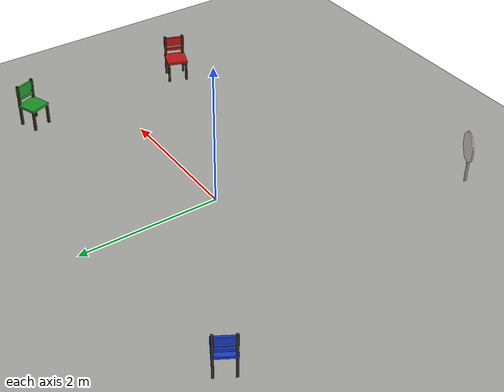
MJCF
<mujoco model="task2_object_scene">
  <!-- Task 2 custom object scene. Static bodies only for MapSpec compatibility. -->
  <compiler meshdir="." texturedir="."/>
  <asset>
    <texture name="floor_tex" type="2d" builtin="checker" rgb1="0.72 0.72 0.70" rgb2="0.62 0.62 0.60" width="512" height="512"/>
    <material name="floor_mat" texture="floor_tex" texrepeat="8 8" reflectance="0.05"/>
    <texture name="stop_tex" type="2d" file="stop_sign.png"/>
    <material name="stop_mat" texture="stop_tex"/>
    <texture name="ball_tex" type="2d" file="ball.png"/>
    <material name="ball_mat" texture="ball_tex"/>
    <mesh name="stop_sign" file="stop_sign.obj"/>
  </asset>
  <worldbody>
    <geom name="floor" type="plane" size="20 20 0.1" material="floor_mat"/>
    <body name="chair_green" pos="3.0 1.2 0" quat="-0.173648 0 0 0.984808">
      <geom type="box" size="0.1540 0.1540 0.0175" pos="0.0000 0.0000 0.3150" rgba="0.10 0.60 0.15 1"/>
      <geom type="box" size="0.0154 0.0154 0.1505" pos="-0.1330 -0.1330 0.1505" rgba="0.25 0.18 0.12 1"/>
      <geom type="box" size="0.0154 0.0154 0.1505" pos="-0.1330 0.1330 0.1505" rgba="0.25 0.18 0.12 1"/>
      <geom type="box" size="0.0154 0.0154 0.1505" pos="0.1330 -0.1330 0.1505" rgba="0.25 0.18 0.12 1"/>
      <geom type="box" size="0.0154 0.0154 0.1505" pos="0.1330 0.1330 0.1505" rgba="0.25 0.18 0.12 1"/>
      <geom type="box" size="0.0154 0.0154 0.1540" pos="-0.1330 -0.1330 0.4830" rgba="0.25 0.18 0.12 1"/>
      <geom type="box" size="0.0154 0.0154 0.1540" pos="-0.1330 0.1330 0.4830" rgba="0.25 0.18 0.12 1"/>
      <geom type="box" size="0.0140 0.1540 0.0700" pos="-0.1330 0.0000 0.5460" rgba="0.10 0.60 0.15 1"/>
      <geom type="box" size="0.0140 0.1330 0.0210" pos="-0.1330 0.0000 0.4200" rgba="0.10 0.60 0.15 1"/>
    </body>
    <body name="chair_red" pos="3.0 -1.2 0" quat="0.173648 0 0 0.984808">
      <geom type="box" size="0.1540 0.1540 0.0175" pos="0.0000 0.0000 0.3150" rgba="0.75 0.08 0.08 1"/>
      <geom type="box" size="0.0154 0.0154 0.1505" pos="-0.1330 -0.1330 0.1505" rgba="0.25 0.18 0.12 1"/>
      <geom type="box" size="0.0154 0.0154 0.1505" pos="-0.1330 0.1330 0.1505" rgba="0.25 0.18 0.12 1"/>
      <geom type="box" size="0.0154 0.0154 0.1505" pos="0.1330 -0.1330 0.1505" rgba="0.25 0.18 0.12 1"/>
      <geom type="box" size="0.0154 0.0154 0.1505" pos="0.1330 0.1330 0.1505" rgba="0.25 0.18 0.12 1"/>
      <geom type="box" size="0.0154 0.0154 0.1540" pos="-0.1330 -0.1330 0.4830" rgba="0.25 0.18 0.12 1"/>
      <geom type="box" size="0.0154 0.0154 0.1540" pos="-0.1330 0.1330 0.4830" rgba="0.25 0.18 0.12 1"/>
      <geom type="box" size="0.0140 0.1540 0.0700" pos="-0.1330 0.0000 0.5460" rgba="0.75 0.08 0.08 1"/>
      <geom type="box" size="0.0140 0.1330 0.0210" pos="-0.1330 0.0000 0.4200" rgba="0.75 0.08 0.08 1"/>
    </body>
    <body name="chair_blue" pos="-2.5 1.5 0" quat="0.965926 0 0 -0.258819">
      <geom type="box" size="0.1540 0.1540 0.0175" pos="0.0000 0.0000 0.3150" rgba="0.10 0.25 0.80 1"/>
      <geom type="box" size="0.0154 0.0154 0.1505" pos="-0.1330 -0.1330 0.1505" rgba="0.25 0.18 0.12 1"/>
      <geom type="box" size="0.0154 0.0154 0.1505" pos="-0.1330 0.1330 0.1505" rgba="0.25 0.18 0.12 1"/>
      <geom type="box" size="0.0154 0.0154 0.1505" pos="0.1330 -0.1330 0.1505" rgba="0.25 0.18 0.12 1"/>
      <geom type="box" size="0.0154 0.0154 0.1505" pos="0.1330 0.1330 0.1505" rgba="0.25 0.18 0.12 1"/>
      <geom type="box" size="0.0154 0.0154 0.1540" pos="-0.1330 -0.1330 0.4830" rgba="0.25 0.18 0.12 1"/>
      <geom type="box" size="0.0154 0.0154 0.1540" pos="-0.1330 0.1330 0.4830" rgba="0.25 0.18 0.12 1"/>
      <geom type="box" size="0.0140 0.1540 0.0700" pos="-0.1330 0.0000 0.5460" rgba="0.10 0.25 0.80 1"/>
      <geom type="box" size="0.0140 0.1330 0.0210" pos="-0.1330 0.0000 0.4200" rgba="0.10 0.25 0.80 1"/>
    </body>
    <body name="stop_sign" pos="-1.5 -3.0 0" quat="0.866025 0 0 0.500000">
      <geom type="cylinder" size="0.02 0.20" pos="-0.03 0 0.20" rgba="0.6 0.6 0.6 1"/>
      <geom type="mesh" mesh="stop_sign" material="stop_mat" pos="0 0 0.55"/>
    </body>
  </worldbody>
</mujoco>
